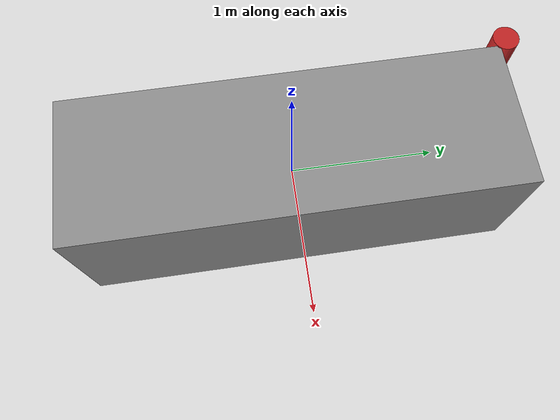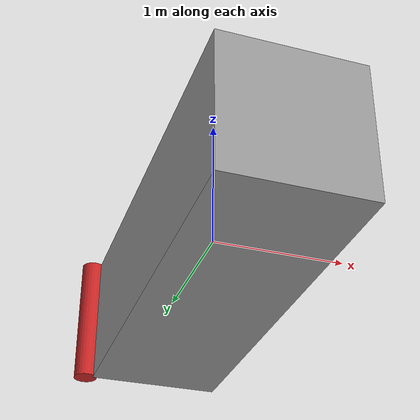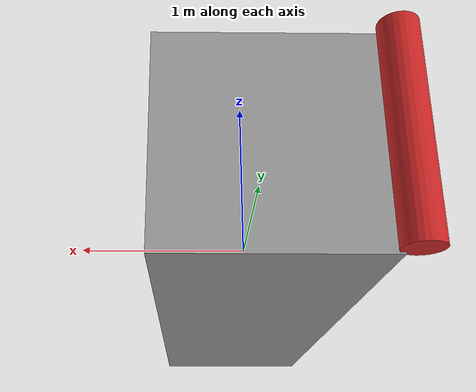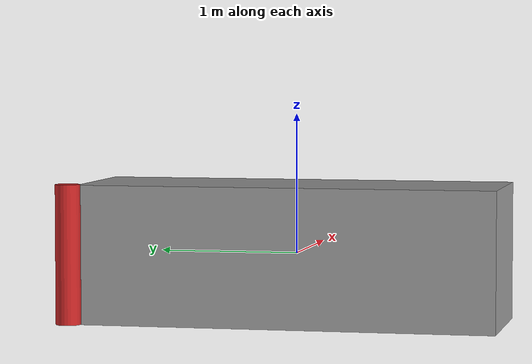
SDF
<?xml version='1.0'?>
<sdf version='1.7'>
  <model name='large_cuboid'>
    <link name='link'>
      <inertial>
        <mass>0.1</mass>
        <inertia>
          <ixx>1.46661</ixx>
          <ixy>0</ixy>
          <ixz>0</ixz>
          <iyy>0.166667</iyy>
          <iyz>0</iyz>
          <izz>1.46661</izz>
        </inertia>
        <pose>0 0 0 0 -0 0</pose>
      </inertial>
      <self_collide>0</self_collide>
      <enable_wind>0</enable_wind>
      <kinematic>0</kinematic>
      <pose>0 0 0 0 -0 0</pose>
      <gravity>1</gravity>
      <sensor name='my_contact' type='contact'>
        <plugin name='my_plugin' filename='libcontact.so'/>
        <contact>
          <collision>large_cuboid_collision</collision>
          <topic>__default_topic__</topic>
        </contact>
        <update_rate>5</update_rate>
      </sensor>
      <visual name='visual'>
        <geometry>
          <box>
            <size>1 3 1</size>
          </box>
        </geometry>
        <material>
          <script>
            <name>Gazebo/Grey</name>
            <uri>file://media/materials/scripts/gazebo.material</uri>
          </script>
          <shader type='pixel'>
            <normal_map>__default__</normal_map>
          </shader>
          <ambient>0.3 0.3 0.3 1</ambient>
          <diffuse>0.7 0.7 0.7 1</diffuse>
          <specular>0.01 0.01 0.01 1</specular>
          <emissive>0 0 0 1</emissive>
        </material>
        <pose>0 0 0 0 -0 0</pose>
        <transparency>0</transparency>
        <cast_shadows>1</cast_shadows>
      </visual>
      <collision name='large_cuboid_collision'>
        <laser_retro>0</laser_retro>
        <max_contacts>10</max_contacts>
        <pose>0 0 0 0 -0 0</pose>
        <geometry>
          <box>
            <size>1 3 1</size>
          </box>
        </geometry>
        <surface>
          <friction>
            <ode>
              <mu>0.5</mu>
              <mu2>1</mu2>
              <fdir1>0 0 0</fdir1>
              <slip1>0</slip1>
              <slip2>0</slip2>
            </ode>
            <torsional>
              <coefficient>1</coefficient>
              <patch_radius>0</patch_radius>
              <surface_radius>0</surface_radius>
              <use_patch_radius>1</use_patch_radius>
              <ode>
                <slip>0</slip>
              </ode>
            </torsional>
          </friction>
          <bounce>
            <restitution_coefficient>0</restitution_coefficient>
            <threshold>1e+06</threshold>
          </bounce>
          <contact>
            <collide_without_contact>0</collide_without_contact>
            <collide_without_contact_bitmask>1</collide_without_contact_bitmask>
            <collide_bitmask>1</collide_bitmask>
            <ode>
              <soft_cfm>0</soft_cfm>
              <soft_erp>0.2</soft_erp>
              <kp>1e+13</kp>
              <kd>1</kd>
              <max_vel>0</max_vel>
              <min_depth>0</min_depth>
            </ode>
            <bullet>
              <split_impulse>1</split_impulse>
              <split_impulse_penetration_threshold>-0.01</split_impulse_penetration_threshold>
              <soft_cfm>0</soft_cfm>
              <soft_erp>0.2</soft_erp>
              <kp>1e+13</kp>
              <kd>1</kd>
            </bullet>
          </contact>
        </surface>
      </collision>
    </link>
    <link name='link_0'>
      <inertial>
        <mass>0.05</mass>
        <inertia>
          <ixx>0.0112198</ixx>
          <ixy>0</ixy>
          <ixz>0</ixz>
          <iyy>0.0112198</iyy>
          <iyz>0</iyz>
          <izz>0.00189861</izz>
        </inertia>
        <pose>0 0 0 0 -0 0</pose>
      </inertial>
      <pose>-0.55 1.55 0.008 0 -0 0</pose>
      <self_collide>0</self_collide>
      <enable_wind>0</enable_wind>
      <kinematic>0</kinematic>
      <gravity>1</gravity>
      <visual name='visual'>
        <pose>0 0 0 0 -0 0</pose>
        <geometry>
          <cylinder>
            <radius>0.09</radius>
            <length>1</length>
          </cylinder>
        </geometry>
        <material>
          <lighting>1</lighting>
          <script>
            <uri>file://media/materials/scripts/gazebo.material</uri>
            <name>Gazebo/Red</name>
          </script>
          <shader type='pixel'>
            <normal_map>__default__</normal_map>
          </shader>
          <ambient>1 0 0 1</ambient>
          <diffuse>1 0 0 1</diffuse>
          <specular>0.1 0.1 0.1 1</specular>
          <emissive>0 0 0 1</emissive>
        </material>
        <transparency>0</transparency>
        <cast_shadows>0</cast_shadows>
      </visual>
      <collision name='collision'>
        <laser_retro>0</laser_retro>
        <max_contacts>10</max_contacts>
        <pose>0 0 0 0 -0 0</pose>
        <geometry>
          <cylinder>
            <radius>0.09</radius>
            <length>1</length>
          </cylinder>
        </geometry>
        <surface>
          <friction>
            <ode>
              <mu>1</mu>
              <mu2>1</mu2>
              <fdir1>0 0 -1</fdir1>
              <slip1>0</slip1>
              <slip2>0</slip2>
            </ode>
            <torsional>
              <coefficient>1</coefficient>
              <patch_radius>0.1</patch_radius>
              <surface_radius>0</surface_radius>
              <use_patch_radius>1</use_patch_radius>
              <ode>
                <slip>0</slip>
              </ode>
            </torsional>
          </friction>
          <bounce>
            <restitution_coefficient>0</restitution_coefficient>
            <threshold>1e+06</threshold>
          </bounce>
          <contact>
            <collide_without_contact>0</collide_without_contact>
            <collide_without_contact_bitmask>1</collide_without_contact_bitmask>
            <collide_bitmask>1</collide_bitmask>
            <ode>
              <soft_cfm>0</soft_cfm>
              <soft_erp>0.2</soft_erp>
              <kp>1e+13</kp>
              <kd>1</kd>
              <max_vel>0.01</max_vel>
              <min_depth>0</min_depth>
            </ode>
            <bullet>
              <split_impulse>1</split_impulse>
              <split_impulse_penetration_threshold>-0.01</split_impulse_penetration_threshold>
              <soft_cfm>0</soft_cfm>
              <soft_erp>0.2</soft_erp>
              <kp>1e+13</kp>
              <kd>1</kd>
            </bullet>
          </contact>
        </surface>
      </collision>
    </link>
    <joint name='link_JOINT_0' type='fixed'>
      <parent>link</parent>
      <child>link_0</child>
      <pose>0 0 0 0 -0 0</pose>
      <physics>
        <ode>
          <limit>
            <cfm>0</cfm>
            <erp>0.2</erp>
          </limit>
          <suspension>
            <cfm>0</cfm>
            <erp>0.2</erp>
          </suspension>
        </ode>
      </physics>
    </joint>
    <static>0</static>
    <allow_auto_disable>1</allow_auto_disable>
  </model>
</sdf>
